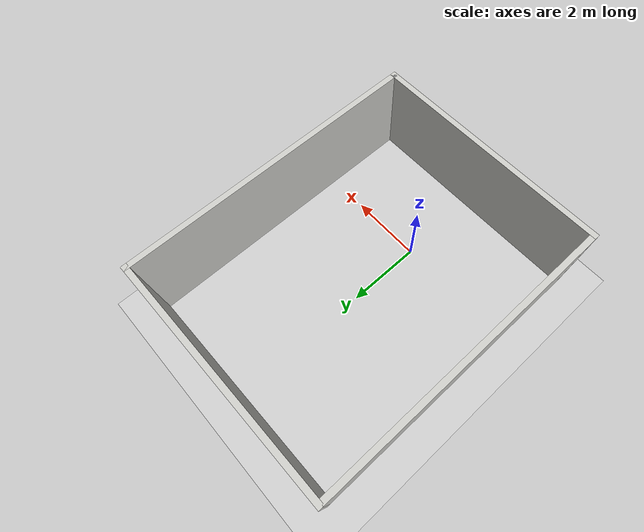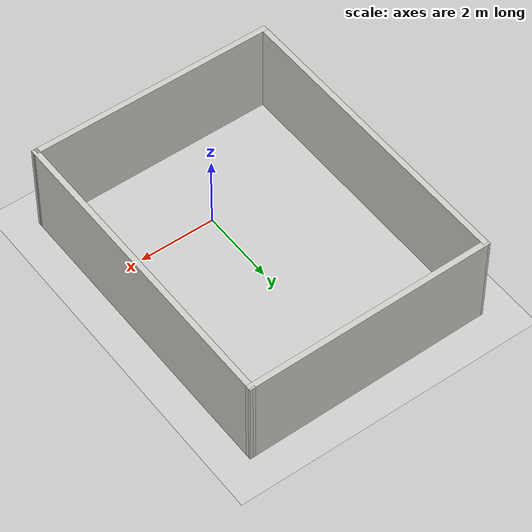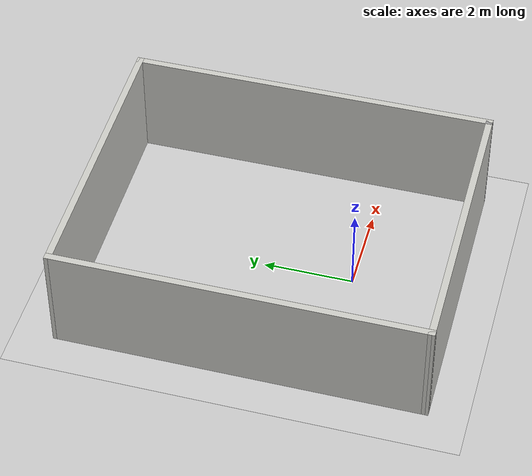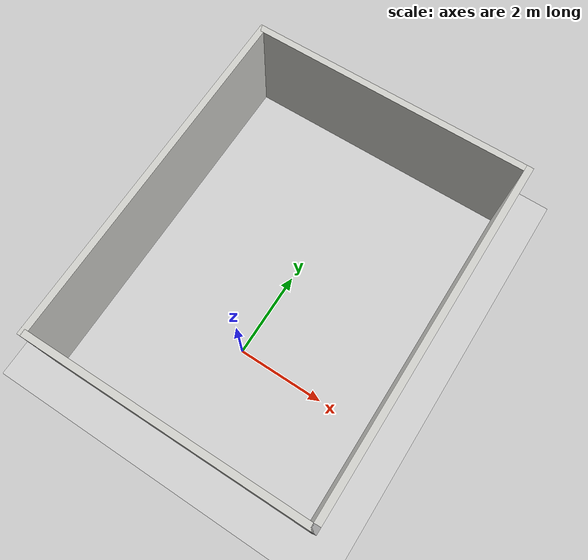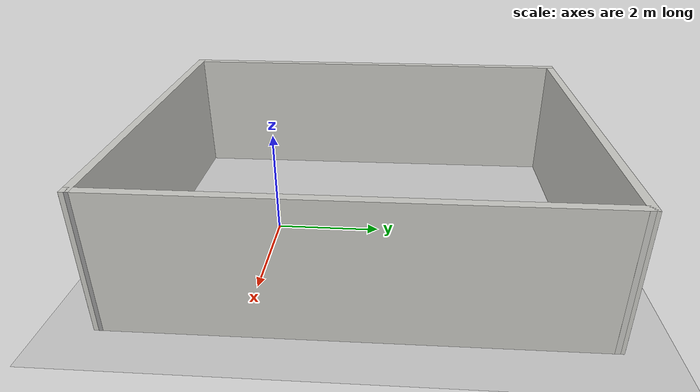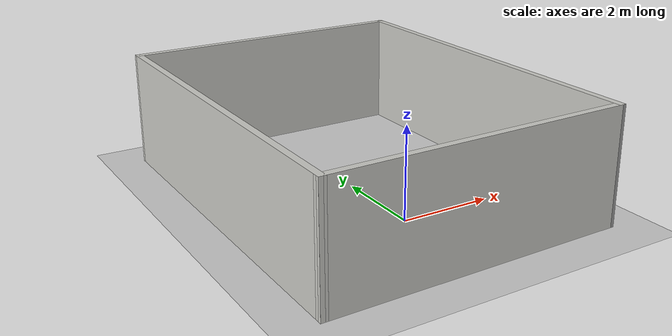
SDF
<?xml version="1.0" ?>
<sdf version="1.4">
  <world name="default">
    <include>
      <uri>model://ground_plane</uri>
    </include>
    <include>
      <uri>model://sun</uri>
    </include>
    <include>
      <uri>model://cc2f</uri>
      <name>train_world</name>
      <pose>0 1.75 0 0 0 1.57</pose>
    </include>
    <gui fullscreen='0'>
      <camera name='user_camera'>
        <pose>0.8 0.0 12.0 0 1.5708 0</pose>
        <view_controller>orbit</view_controller>
      </camera>
    </gui>
  </world>
</sdf>

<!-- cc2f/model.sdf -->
<sdf version='1.6'>
  <model name='cc2f'>
    <pose frame=''>1.30211 -4.47786 0 0 -0 0</pose>
    <link name='Wall_10'>
      <collision name='Wall_10_Collision'>
        <geometry>
          <box>
            <size>0.15 0.15 2.5</size>
          </box>
        </geometry>
        <pose frame=''>0 0 1.25 0 -0 0</pose>
      </collision>
      <visual name='Wall_10_Visual'>
        <pose frame=''>0 0 1.25 0 -0 0</pose>
        <geometry>
          <box>
            <size>0.15 0.15 2.5</size>
          </box>
        </geometry>
        <material>
          <script>
            <uri>file://media/materials/scripts/gazebo.material</uri>
            <name>Gazebo/Grey</name>
          </script>
          <ambient>1 1 1 1</ambient>
        </material>
        <meta>
          <layer>0</layer>
        </meta>
      </visual>
      <pose frame=''>-4.01511 -3.19714 0 0 -0 0</pose>
    </link>
    <link name='Wall_11'>
      <collision name='Wall_11_Collision'>
        <geometry>
          <box>
            <size>6.53031 0.15 2.5</size>
          </box>
        </geometry>
        <pose frame=''>0 0 1.25 0 -0 0</pose>
      </collision>
      <visual name='Wall_11_Visual'>
        <pose frame=''>0 0 1.25 0 -0 0</pose>
        <geometry>
          <box>
            <size>6.53031 0.15 2.5</size>
          </box>
        </geometry>
        <material>
          <script>
            <uri>file://media/materials/scripts/gazebo.material</uri>
            <name>Gazebo/CeilingTiled</name>
          </script>
          <ambient>0.760784 0.662745 0.627451 1</ambient>
        </material>
        <meta>
          <layer>0</layer>
        </meta>
      </visual>
      <pose frame=''>-4.0416 -0.007143 0 0 -0 1.5791</pose>
    </link>
    <link name='Wall_5'>
      <collision name='Wall_5_Collision'>
        <geometry>
          <box>
            <size>8.21476 0.15 2.5</size>
          </box>
        </geometry>
        <pose frame=''>0 0 1.25 0 -0 0</pose>
      </collision>
      <visual name='Wall_5_Visual'>
        <pose frame=''>0 0 1.25 0 -0 0</pose>
        <geometry>
          <box>
            <size>8.21476 0.15 2.5</size>
          </box>
        </geometry>
        <material>
          <script>
            <uri>file://media/materials/scripts/gazebo.material</uri>
            <name>Gazebo/CeilingTiled</name>
          </script>
          <ambient>0.760784 0.662745 0.627451 1</ambient>
        </material>
        <meta>
          <layer>0</layer>
        </meta>
      </visual>
      <pose frame=''>-0.035605 3.18986 0 0 -0 0.001736</pose>
    </link>
    <link name='Wall_7'>
      <collision name='Wall_7_Collision'>
        <geometry>
          <box>
            <size>6.53064 0.15 2.5</size>
          </box>
        </geometry>
        <pose frame=''>0 0 1.25 0 -0 0</pose>
      </collision>
      <visual name='Wall_7_Visual'>
        <pose frame=''>0 0 1.25 0 -0 0</pose>
        <geometry>
          <box>
            <size>6.53064 0.15 2.5</size>
          </box>
        </geometry>
        <material>
          <script>
            <uri>file://media/materials/scripts/gazebo.material</uri>
            <name>Gazebo/CeilingTiled</name>
          </script>
          <ambient>0.760784 0.662745 0.627451 1</ambient>
        </material>
        <meta>
          <layer>0</layer>
        </meta>
      </visual>
      <pose frame=''>4.0324 0.006857 0 0 -0 -1.55967</pose>
    </link>
    <link name='Wall_9'>
      <collision name='Wall_9_Collision'>
        <geometry>
          <box>
            <size>8.23301 0.15 2.5</size>
          </box>
        </geometry>
        <pose frame=''>0 0 1.25 0 -0 0</pose>
      </collision>
      <visual name='Wall_9_Visual'>
        <pose frame=''>0 0 1.25 0 -0 0</pose>
        <geometry>
          <box>
            <size>8.23301 0.15 2.5</size>
          </box>
        </geometry>
        <material>
          <script>
            <uri>file://media/materials/scripts/gazebo.material</uri>
            <name>Gazebo/CeilingTiled</name>
          </script>
          <ambient>0.760784 0.662745 0.627451 1</ambient>
        </material>
        <meta>
          <layer>0</layer>
        </meta>
      </visual>
      <pose frame=''>0.026395 -3.19014 0 0 -0 -3.13986</pose>
    </link>
    <static>1</static>
  </model>
</sdf>
